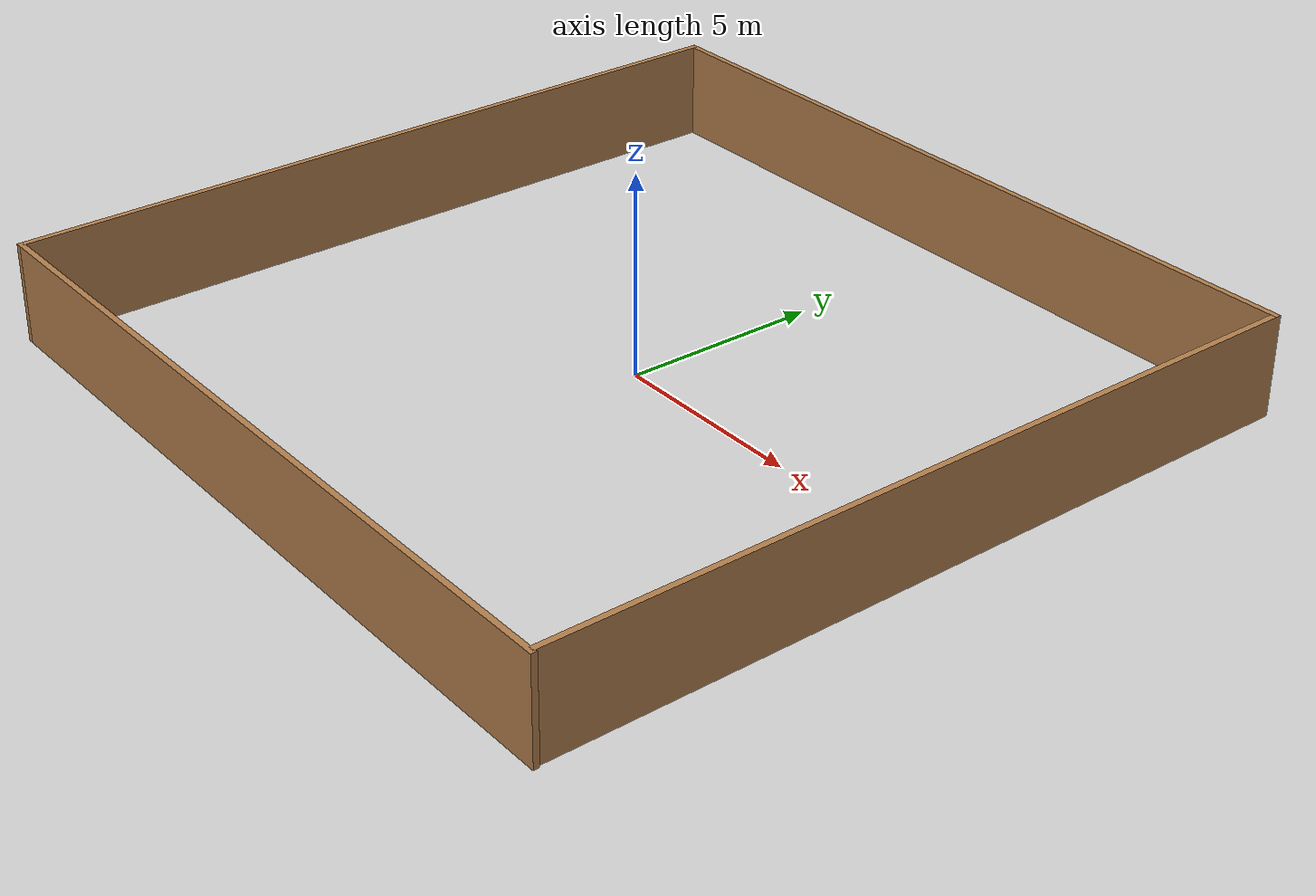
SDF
<?xml version='1.0'?>
<sdf version='1.7'>
  <model name='Class'>
    <pose>0 -0.125 0 0 -0 0</pose>
    <link name='Wall_16'>
      <collision name='Wall_16_Collision'>
        <geometry>
          <box>
            <size>19.9 0.15 2.5</size>
          </box>
        </geometry>
        <pose>0 0 1.25 0 -0 0</pose>
      </collision>
      <visual name='Wall_16_Visual'>
        <pose>0 0 1.25 0 -0 0</pose>
        <geometry>
          <box>
            <size>19.9 0.15 2.5</size>
          </box>
        </geometry>
        <material>
          <script>
            <uri>file://media/materials/scripts/gazebo.material</uri>
            <name>Gazebo/Wood</name>
          </script>
          <ambient>1 1 1 1</ambient>
        </material>
        <meta>
          <layer>0</layer>
        </meta>
      </visual>
      <pose>-9.9 0 0 0 -0 1.5708</pose>
    </link>
    <link name='Wall_18'>
      <collision name='Wall_18_Collision'>
        <geometry>
          <box>
            <size>19.9 0.15 2.5</size>
          </box>
        </geometry>
        <pose>0 0 1.25 0 -0 0</pose>
      </collision>
      <visual name='Wall_18_Visual'>
        <pose>0 0 1.25 0 -0 0</pose>
        <geometry>
          <box>
            <size>19.9 0.15 2.5</size>
          </box>
        </geometry>
        <material>
          <script>
            <uri>file://media/materials/scripts/gazebo.material</uri>
            <name>Gazebo/Wood</name>
          </script>
          <ambient>1 1 1 1</ambient>
        </material>
        <meta>
          <layer>0</layer>
        </meta>
      </visual>
      <pose>-0.025 9.875 0 0 -0 0</pose>
    </link>
    <link name='Wall_20'>
      <collision name='Wall_20_Collision'>
        <geometry>
          <box>
            <size>19.9 0.15 2.5</size>
          </box>
        </geometry>
        <pose>0 0 1.25 0 -0 0</pose>
      </collision>
      <visual name='Wall_20_Visual'>
        <pose>0 0 1.25 0 -0 0</pose>
        <geometry>
          <box>
            <size>19.9 0.15 2.5</size>
          </box>
        </geometry>
        <material>
          <script>
            <uri>file://media/materials/scripts/gazebo.material</uri>
            <name>Gazebo/Wood</name>
          </script>
          <ambient>1 1 1 1</ambient>
        </material>
        <meta>
          <layer>0</layer>
        </meta>
      </visual>
      <pose>9.85 0 0 0 -0 -1.5708</pose>
    </link>
    <link name='Wall_9'>
      <collision name='Wall_9_Collision'>
        <geometry>
          <box>
            <size>19.95 0.15 2.5</size>
          </box>
        </geometry>
        <pose>0 0 1.25 0 -0 0</pose>
      </collision>
      <visual name='Wall_9_Visual'>
        <pose>0 0 1.25 0 -0 0</pose>
        <geometry>
          <box>
            <size>19.95 0.15 2.5</size>
          </box>
        </geometry>
        <material>
          <script>
            <uri>file://media/materials/scripts/gazebo.material</uri>
            <name>Gazebo/Wood</name>
          </script>
          <ambient>1 1 1 1</ambient>
        </material>
        <meta>
          <layer>0</layer>
        </meta>
      </visual>
      <pose>0 -9.875 0 0 -0 3.14159</pose>
    </link>
    <static>1</static>
  </model>
</sdf>
